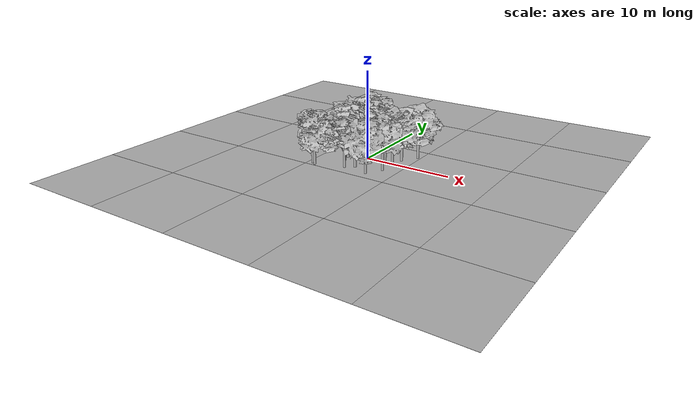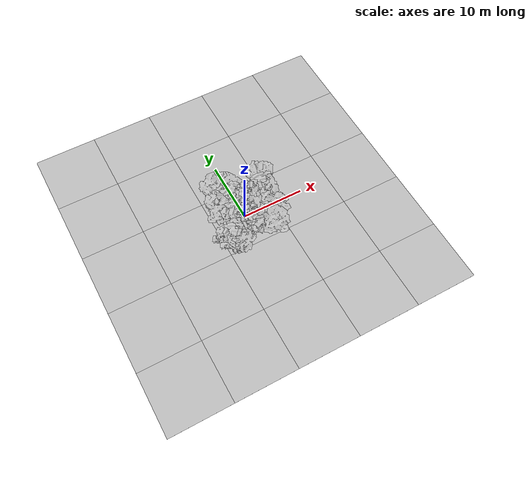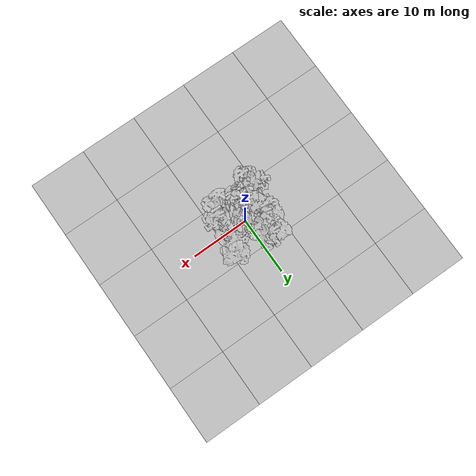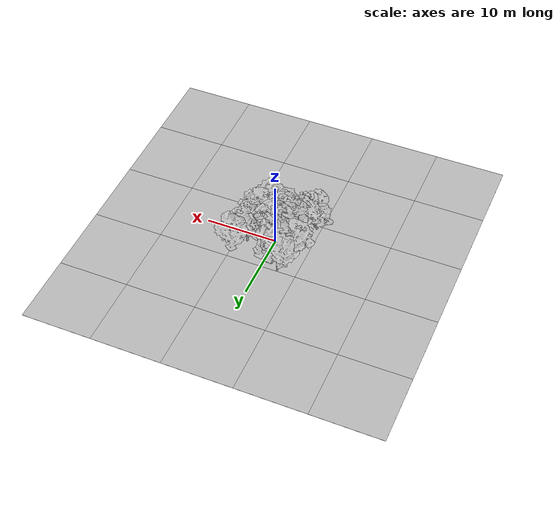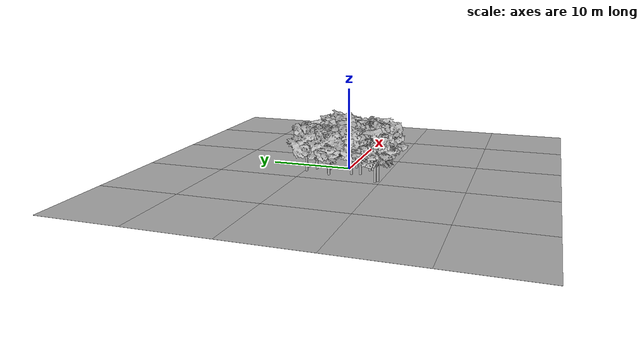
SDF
<?xml version='1.0' ?>
<sdf version='1.6'>
  <world name='world_jean'>
    <gravity>0 0 -9.8</gravity>
    <magnetic_field>6.0e-6 2.3e-5 -4.2e-5</magnetic_field>
    <atmosphere type='adiabatic'/>

    <scene>
      <ambient>0.4 0.4 0.4 1</ambient>
      <background>0.7 0.7 0.7 1</background>
      <shadows>true</shadows>
    </scene>

    <light name='sun' type='directional'>
      <cast_shadows>true</cast_shadows>
      <pose>0 0 20 0 0 0</pose>
      <diffuse>0.8 0.8 0.8 1</diffuse>
      <specular>0.2 0.2 0.2 1</specular>
      <attenuation>
        <range>1000</range>
        <constant>0.9</constant>
        <linear>0.01</linear>
        <quadratic>0.001</quadratic>
      </attenuation>
      <direction>-0.5 0.1 -0.9</direction>
    </light>

    <include>
      <uri>model://green_ground</uri>
      <name>green_ground</name>
      <pose>0 0 0 0 0 0</pose>
    </include>

    <include>
      <uri>model://world_jean_tree</uri>
      <name>world_jean_tree_001</name>
      <pose>1.986238 0.404763 0.000000 0 0 -1.401532</pose>
    </include>

    <include>
      <uri>model://world_jean_tree</uri>
      <name>world_jean_tree_002</name>
      <pose>0.000000 0.000000 0.000000 0 0 0.000000</pose>
    </include>

    <include>
      <uri>model://world_jean_tree</uri>
      <name>world_jean_tree_003</name>
      <pose>-2.321035 4.749358 0.000000 0 0 -2.405628</pose>
    </include>

    <include>
      <uri>model://world_jean_tree</uri>
      <name>world_jean_tree_004</name>
      <pose>0.754366 -0.724326 0.000000 0 0 -1.852761</pose>
    </include>

    <include>
      <uri>model://world_jean_tree</uri>
      <name>world_jean_tree_005</name>
      <pose>0.257643 -2.963321 0.000000 0 0 -2.835246</pose>
    </include>

    <include>
      <uri>model://world_jean_tree</uri>
      <name>world_jean_tree_006</name>
      <pose>-3.915372 -4.709622 0.000000 0 0 -0.055596</pose>
    </include>

    <include>
      <uri>model://world_jean_tree</uri>
      <name>world_jean_tree_007</name>
      <pose>-4.350989 -4.475341 0.000000 0 0 -0.055596</pose>
    </include>

    <include>
      <uri>model://world_jean_tree</uri>
      <name>world_jean_tree_008</name>
      <pose>0.027284 -2.633390 0.000000 0 0 -2.444524</pose>
    </include>

    <include>
      <uri>model://world_jean_tree</uri>
      <name>world_jean_tree_009</name>
      <pose>-2.091227 -0.923786 0.000000 0 0 0.384187</pose>
    </include>

    <include>
      <uri>model://world_jean_tree</uri>
      <name>world_jean_tree_010</name>
      <pose>-2.378709 1.914971 0.000000 0 0 0.963397</pose>
    </include>

    <include>
      <uri>model://world_jean_tree</uri>
      <name>world_jean_tree_011</name>
      <pose>-1.143144 3.841885 0.000000 0 0 -0.903485</pose>
    </include>

    <include>
      <uri>model://world_jean_tree</uri>
      <name>world_jean_tree_012</name>
      <pose>-3.062804 1.605219 0.000000 0 0 -2.689910</pose>
    </include>

    <include>
      <uri>model://world_jean_tree</uri>
      <name>world_jean_tree_013</name>
      <pose>4.685165 3.038776 0.000000 0 0 1.851518</pose>
    </include>

    <include>
      <uri>model://world_jean_tree</uri>
      <name>world_jean_tree_014</name>
      <pose>-1.238277 2.144758 0.000000 0 0 -0.140443</pose>
    </include>

    <include>
      <uri>model://world_jean_tree</uri>
      <name>world_jean_tree_015</name>
      <pose>3.556717 1.347686 0.000000 0 0 0.462843</pose>
    </include>

    <include>
      <uri>model://world_jean_tree</uri>
      <name>world_jean_tree_016</name>
      <pose>3.246999 -2.149990 0.000000 0 0 -2.599724</pose>
    </include>

    <include>
      <uri>model://world_jean_tree</uri>
      <name>world_jean_tree_017</name>
      <pose>2.192528 -3.880258 0.000000 0 0 -0.963640</pose>
    </include>

    <include>
      <uri>model://world_jean_tree</uri>
      <name>world_jean_tree_018</name>
      <pose>3.050985 0.223972 0.000000 0 0 2.207372</pose>
    </include>

    <include>
      <uri>model://world_jean_tree</uri>
      <name>world_jean_tree_019</name>
      <pose>-0.665921 -3.660063 0.000000 0 0 0.942517</pose>
    </include>

    <include>
      <uri>model://world_jean_tree</uri>
      <name>world_jean_tree_020</name>
      <pose>-1.806085 -1.958286 0.000000 0 0 1.279711</pose>
    </include>

<gui fullscreen='0'>
      <camera name='user_camera'>
        <pose>0 -18 12 0 0.55 1.57</pose>
      </camera>
    </gui>
  </world>
</sdf>

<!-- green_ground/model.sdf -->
<sdf version="1.6">
  <model name="green_ground">
    <static>true</static>
    <link name="link">
      <collision name="collision">
        <pose>0 0 0 0 0 0</pose>
        <geometry>
          <plane>
            <normal>0 0 1</normal>
            <size>200 200</size>
          </plane>
        </geometry>
      </collision>
      <visual name='visual_m20_m20'>
        <pose>-20 -20 0 0 0 0</pose>
        <geometry>
          <mesh>
            <uri>model://world_jean_ground/meshes/world_jean_ground.obj</uri>
            <scale>1 1 1</scale>
          </mesh>
        </geometry>
      </visual>      <visual name='visual_m20_m10'>
        <pose>-20 -10 0 0 0 0</pose>
        <geometry>
          <mesh>
            <uri>model://world_jean_ground/meshes/world_jean_ground.obj</uri>
            <scale>1 1 1</scale>
          </mesh>
        </geometry>
      </visual>      <visual name='visual_m20_0'>
        <pose>-20 0 0 0 0 0</pose>
        <geometry>
          <mesh>
            <uri>model://world_jean_ground/meshes/world_jean_ground.obj</uri>
            <scale>1 1 1</scale>
          </mesh>
        </geometry>
      </visual>      <visual name='visual_m20_10'>
        <pose>-20 10 0 0 0 0</pose>
        <geometry>
          <mesh>
            <uri>model://world_jean_ground/meshes/world_jean_ground.obj</uri>
            <scale>1 1 1</scale>
          </mesh>
        </geometry>
      </visual>      <visual name='visual_m20_20'>
        <pose>-20 20 0 0 0 0</pose>
        <geometry>
          <mesh>
            <uri>model://world_jean_ground/meshes/world_jean_ground.obj</uri>
            <scale>1 1 1</scale>
          </mesh>
        </geometry>
      </visual>      <visual name='visual_m10_m20'>
        <pose>-10 -20 0 0 0 0</pose>
        <geometry>
          <mesh>
            <uri>model://world_jean_ground/meshes/world_jean_ground.obj</uri>
            <scale>1 1 1</scale>
          </mesh>
        </geometry>
      </visual>      <visual name='visual_m10_m10'>
        <pose>-10 -10 0 0 0 0</pose>
        <geometry>
          <mesh>
            <uri>model://world_jean_ground/meshes/world_jean_ground.obj</uri>
            <scale>1 1 1</scale>
          </mesh>
        </geometry>
      </visual>      <visual name='visual_m10_0'>
        <pose>-10 0 0 0 0 0</pose>
        <geometry>
          <mesh>
            <uri>model://world_jean_ground/meshes/world_jean_ground.obj</uri>
            <scale>1 1 1</scale>
          </mesh>
        </geometry>
      </visual>      <visual name='visual_m10_10'>
        <pose>-10 10 0 0 0 0</pose>
        <geometry>
          <mesh>
            <uri>model://world_jean_ground/meshes/world_jean_ground.obj</uri>
            <scale>1 1 1</scale>
          </mesh>
        </geometry>
      </visual>      <visual name='visual_m10_20'>
        <pose>-10 20 0 0 0 0</pose>
        <geometry>
          <mesh>
            <uri>model://world_jean_ground/meshes/world_jean_ground.obj</uri>
            <scale>1 1 1</scale>
          </mesh>
        </geometry>
      </visual>      <visual name='visual_0_m20'>
        <pose>0 -20 0 0 0 0</pose>
        <geometry>
          <mesh>
            <uri>model://world_jean_ground/meshes/world_jean_ground.obj</uri>
            <scale>1 1 1</scale>
          </mesh>
        </geometry>
      </visual>      <visual name='visual_0_m10'>
        <pose>0 -10 0 0 0 0</pose>
        <geometry>
          <mesh>
            <uri>model://world_jean_ground/meshes/world_jean_ground.obj</uri>
            <scale>1 1 1</scale>
          </mesh>
        </geometry>
      </visual>      <visual name='visual_0_0'>
        <pose>0 0 0 0 0 0</pose>
        <geometry>
          <mesh>
            <uri>model://world_jean_ground/meshes/world_jean_ground.obj</uri>
            <scale>1 1 1</scale>
          </mesh>
        </geometry>
      </visual>      <visual name='visual_0_10'>
        <pose>0 10 0 0 0 0</pose>
        <geometry>
          <mesh>
            <uri>model://world_jean_ground/meshes/world_jean_ground.obj</uri>
            <scale>1 1 1</scale>
          </mesh>
        </geometry>
      </visual>      <visual name='visual_0_20'>
        <pose>0 20 0 0 0 0</pose>
        <geometry>
          <mesh>
            <uri>model://world_jean_ground/meshes/world_jean_ground.obj</uri>
            <scale>1 1 1</scale>
          </mesh>
        </geometry>
      </visual>      <visual name='visual_10_m20'>
        <pose>10 -20 0 0 0 0</pose>
        <geometry>
          <mesh>
            <uri>model://world_jean_ground/meshes/world_jean_ground.obj</uri>
            <scale>1 1 1</scale>
          </mesh>
        </geometry>
      </visual>      <visual name='visual_10_m10'>
        <pose>10 -10 0 0 0 0</pose>
        <geometry>
          <mesh>
            <uri>model://world_jean_ground/meshes/world_jean_ground.obj</uri>
            <scale>1 1 1</scale>
          </mesh>
        </geometry>
      </visual>      <visual name='visual_10_0'>
        <pose>10 0 0 0 0 0</pose>
        <geometry>
          <mesh>
            <uri>model://world_jean_ground/meshes/world_jean_ground.obj</uri>
            <scale>1 1 1</scale>
          </mesh>
        </geometry>
      </visual>      <visual name='visual_10_10'>
        <pose>10 10 0 0 0 0</pose>
        <geometry>
          <mesh>
            <uri>model://world_jean_ground/meshes/world_jean_ground.obj</uri>
            <scale>1 1 1</scale>
          </mesh>
        </geometry>
      </visual>      <visual name='visual_10_20'>
        <pose>10 20 0 0 0 0</pose>
        <geometry>
          <mesh>
            <uri>model://world_jean_ground/meshes/world_jean_ground.obj</uri>
            <scale>1 1 1</scale>
          </mesh>
        </geometry>
      </visual>      <visual name='visual_20_m20'>
        <pose>20 -20 0 0 0 0</pose>
        <geometry>
          <mesh>
            <uri>model://world_jean_ground/meshes/world_jean_ground.obj</uri>
            <scale>1 1 1</scale>
          </mesh>
        </geometry>
      </visual>      <visual name='visual_20_m10'>
        <pose>20 -10 0 0 0 0</pose>
        <geometry>
          <mesh>
            <uri>model://world_jean_ground/meshes/world_jean_ground.obj</uri>
            <scale>1 1 1</scale>
          </mesh>
        </geometry>
      </visual>      <visual name='visual_20_0'>
        <pose>20 0 0 0 0 0</pose>
        <geometry>
          <mesh>
            <uri>model://world_jean_ground/meshes/world_jean_ground.obj</uri>
            <scale>1 1 1</scale>
          </mesh>
        </geometry>
      </visual>      <visual name='visual_20_10'>
        <pose>20 10 0 0 0 0</pose>
        <geometry>
          <mesh>
            <uri>model://world_jean_ground/meshes/world_jean_ground.obj</uri>
            <scale>1 1 1</scale>
          </mesh>
        </geometry>
      </visual>      <visual name='visual_20_20'>
        <pose>20 20 0 0 0 0</pose>
        <geometry>
          <mesh>
            <uri>model://world_jean_ground/meshes/world_jean_ground.obj</uri>
            <scale>1 1 1</scale>
          </mesh>
        </geometry>
      </visual>      <self_collide>false</self_collide>
      <kinematic>false</kinematic>
    </link>
  </model>
</sdf>

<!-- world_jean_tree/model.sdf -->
<sdf version="1.6">
  <model name="world_jean_tree">
    <static>true</static>
    <link name="link">
      <collision name="collision">
        <pose>0 0 1.0 0 0 0</pose>
        <geometry>
          <cylinder>
            <radius>0.22</radius>
            <length>2.0</length>
          </cylinder>
        </geometry>
      </collision>
      <visual name="visual">
        <geometry>
          <mesh>
            <uri>model://world_jean_tree/meshes/world_jean_tree.obj</uri>
            <scale>1 1 1</scale>
          </mesh>
        </geometry>
      </visual>
    </link>
  </model>
</sdf>
